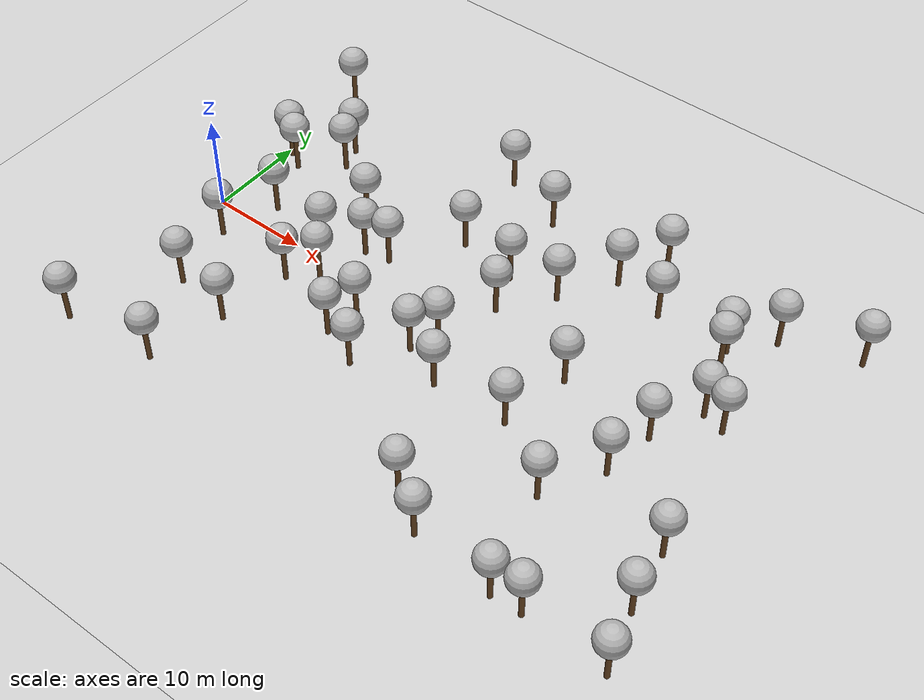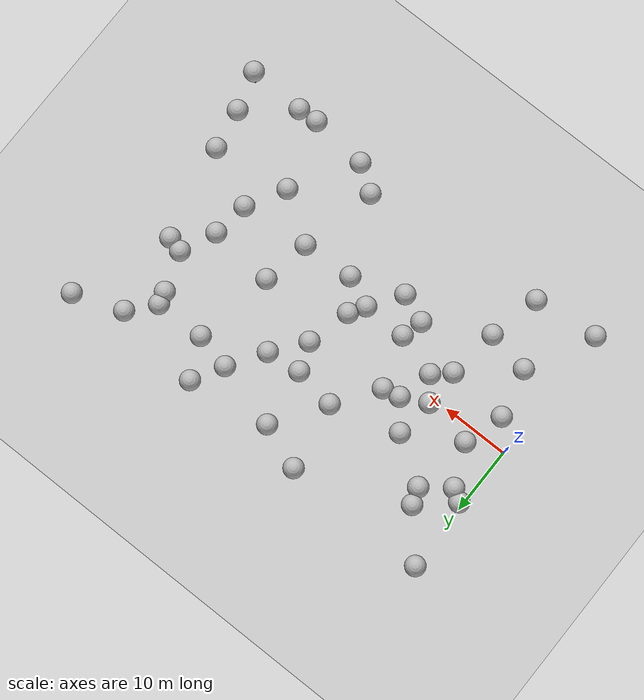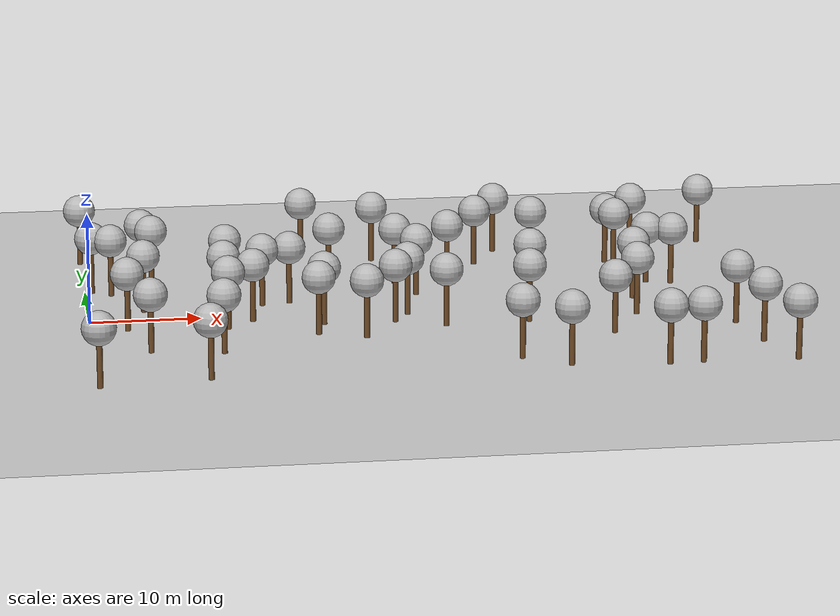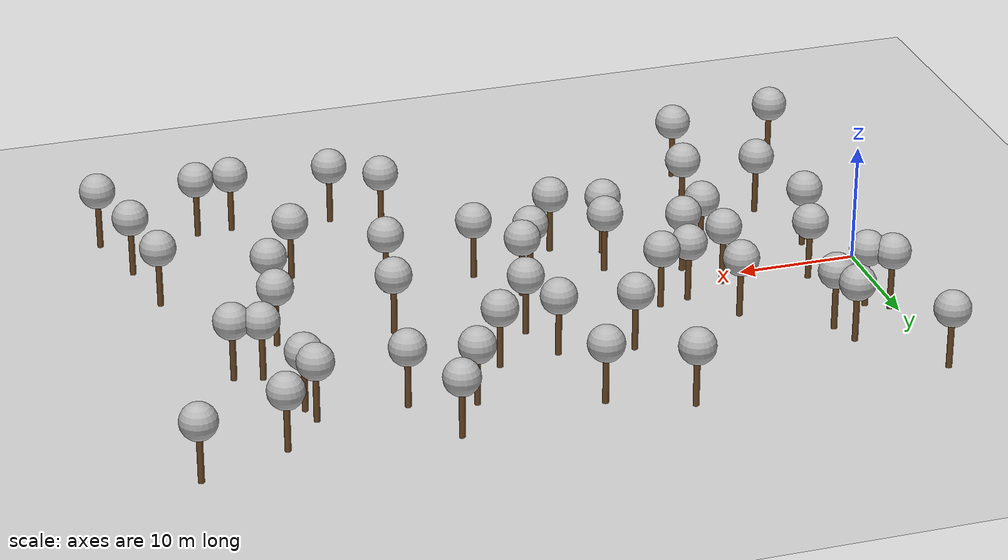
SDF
<sdf version='1.7'>
            <world name='default'>
                <light name='sun' type='directional'>
                <cast_shadows>1</cast_shadows>
                <pose>0 0 10 0 -0 0</pose>
                <diffuse>0.8 0.8 0.8 1</diffuse>
                <specular>0.2 0.2 0.2 1</specular>
                <attenuation>
                    <range>1000</range>
                    <constant>0.9</constant>
                    <linear>0.01</linear>
                    <quadratic>0.001</quadratic>
                </attenuation>
                <direction>-0.5 0.1 -0.9</direction>
                <spot>
                    <inner_angle>0</inner_angle>
                    <outer_angle>0</outer_angle>
                    <falloff>0</falloff>
                </spot>
                </light>
                <model name='ground_plane'>
                <static>1</static>
                <link name='link'>
                    <collision name='collision'>
                    <geometry>
                        <plane>
                        <normal>0 0 1</normal>
                        <size>100 100</size>
                        </plane>
                    </geometry>
                    <surface>
                        <contact>
                        <collide_bitmask>65535</collide_bitmask>
                        <ode/>
                        </contact>
                        <friction>
                        <ode>
                            <mu>100</mu>
                            <mu2>50</mu2>
                        </ode>
                        <torsional>
                            <ode/>
                        </torsional>
                        </friction>
                        <bounce/>
                    </surface>
                    <max_contacts>10</max_contacts>
                    </collision>
                    <visual name='visual'>
                    <cast_shadows>0</cast_shadows>
                    <geometry>
                        <plane>
                        <normal>0 0 1</normal>
                        <size>100 100</size>
                        </plane>
                    </geometry>
                    <material>
                        <script>
                        <uri>file://media/materials/scripts/gazebo.material</uri>
                        <name>Gazebo/Grey</name>
                        </script>
                    </material>
                    </visual>
                    <self_collide>0</self_collide>
                    <enable_wind>0</enable_wind>
                    <kinematic>0</kinematic>
                </link>
                </model>
                <gravity>0 0 -9.8</gravity>
                <magnetic_field>6e-06 2.3e-05 -4.2e-05</magnetic_field>
                <atmosphere type='adiabatic'/>
                <physics type='ode'>
                <max_step_size>0.001</max_step_size>
                <real_time_factor>1</real_time_factor>
                <real_time_update_rate>1000</real_time_update_rate>
                </physics>
                <scene>
                <ambient>0.4 0.4 0.4 1</ambient>
                <background>0.7 0.7 0.7 1</background>
                <shadows>1</shadows>
                </scene>
                <wind/>
                <spherical_coordinates>
                <surface_model>EARTH_WGS84</surface_model>
                <latitude_deg>0</latitude_deg>
                <longitude_deg>0</longitude_deg>
                <elevation>0</elevation>
                <heading_deg>0</heading_deg>
                </spherical_coordinates>

    <model name='tree_simple498'>
      <static>1</static>
      <link name='link'>
        <pose frame=''>0 0 0.1 0 -0 0</pose>
        <collision name='collision_trunk'>
          <pose frame=''>0 0 2 0 -0 0</pose>
          <geometry>
            <cylinder>
              <radius>0.25</radius>
              <length>4</length>
            </cylinder>
          </geometry>
        </collision>
        <collision name='collision_treetop'>
          <pose frame=''>0 0 5.2 0 -0 0</pose>
          <geometry>
            <sphere>
              <radius>1.5</radius>
            </sphere>
          </geometry>
        </collision>
        <visual name='trunk'>
          <pose frame=''>0 0 2 0 -0 0</pose>
          <geometry>
            <cylinder>
              <radius>0.25</radius>
              <length>4</length>
            </cylinder>
          </geometry>
          <material>
            <script>
              <uri>model://tree_simple/scripts</uri>
              <uri>model://tree_simple/materials/textures</uri>
              <name>TreeSimple/Trunk</name>
            </script>
          </material>
        </visual>
        <visual name='treetop'>
          <pose frame=''>0 0 5.2 0 -0 0</pose>
          <geometry>
            <sphere>
              <radius>1.5</radius>
            </sphere>
          </geometry>
          <material>
            <script>
              <uri>model://tree_simple/scripts</uri>
              <uri>model://tree_simple/materials/textures</uri>
              <name>TreeSimple/Treetop</name>
            </script>
          </material>
        </visual>
        <self_collide>0</self_collide>
        <kinematic>0</kinematic>
      </link>
      <pose frame=''>0.0 20.0 0 0 -0 0</pose>
    </model>
        <model name='tree_simple497'>
      <static>1</static>
      <link name='link'>
        <pose frame=''>0 0 0.1 0 -0 0</pose>
        <collision name='collision_trunk'>
          <pose frame=''>0 0 2 0 -0 0</pose>
          <geometry>
            <cylinder>
              <radius>0.25</radius>
              <length>4</length>
            </cylinder>
          </geometry>
        </collision>
        <collision name='collision_treetop'>
          <pose frame=''>0 0 5.2 0 -0 0</pose>
          <geometry>
            <sphere>
              <radius>1.5</radius>
            </sphere>
          </geometry>
        </collision>
        <visual name='trunk'>
          <pose frame=''>0 0 2 0 -0 0</pose>
          <geometry>
            <cylinder>
              <radius>0.25</radius>
              <length>4</length>
            </cylinder>
          </geometry>
          <material>
            <script>
              <uri>model://tree_simple/scripts</uri>
              <uri>model://tree_simple/materials/textures</uri>
              <name>TreeSimple/Trunk</name>
            </script>
          </material>
        </visual>
        <visual name='treetop'>
          <pose frame=''>0 0 5.2 0 -0 0</pose>
          <geometry>
            <sphere>
              <radius>1.5</radius>
            </sphere>
          </geometry>
          <material>
            <script>
              <uri>model://tree_simple/scripts</uri>
              <uri>model://tree_simple/materials/textures</uri>
              <name>TreeSimple/Treetop</name>
            </script>
          </material>
        </visual>
        <self_collide>0</self_collide>
        <kinematic>0</kinematic>
      </link>
      <pose frame=''>0.0 -20.0 0 0 -0 0</pose>
    </model>
        <model name='tree_simple496'>
      <static>1</static>
      <link name='link'>
        <pose frame=''>0 0 0.1 0 -0 0</pose>
        <collision name='collision_trunk'>
          <pose frame=''>0 0 2 0 -0 0</pose>
          <geometry>
            <cylinder>
              <radius>0.25</radius>
              <length>4</length>
            </cylinder>
          </geometry>
        </collision>
        <collision name='collision_treetop'>
          <pose frame=''>0 0 5.2 0 -0 0</pose>
          <geometry>
            <sphere>
              <radius>1.5</radius>
            </sphere>
          </geometry>
        </collision>
        <visual name='trunk'>
          <pose frame=''>0 0 2 0 -0 0</pose>
          <geometry>
            <cylinder>
              <radius>0.25</radius>
              <length>4</length>
            </cylinder>
          </geometry>
          <material>
            <script>
              <uri>model://tree_simple/scripts</uri>
              <uri>model://tree_simple/materials/textures</uri>
              <name>TreeSimple/Trunk</name>
            </script>
          </material>
        </visual>
        <visual name='treetop'>
          <pose frame=''>0 0 5.2 0 -0 0</pose>
          <geometry>
            <sphere>
              <radius>1.5</radius>
            </sphere>
          </geometry>
          <material>
            <script>
              <uri>model://tree_simple/scripts</uri>
              <uri>model://tree_simple/materials/textures</uri>
              <name>TreeSimple/Treetop</name>
            </script>
          </material>
        </visual>
        <self_collide>0</self_collide>
        <kinematic>0</kinematic>
      </link>
      <pose frame=''>60.0 20.0 0 0 -0 0</pose>
    </model>
        <model name='tree_simple495'>
      <static>1</static>
      <link name='link'>
        <pose frame=''>0 0 0.1 0 -0 0</pose>
        <collision name='collision_trunk'>
          <pose frame=''>0 0 2 0 -0 0</pose>
          <geometry>
            <cylinder>
              <radius>0.25</radius>
              <length>4</length>
            </cylinder>
          </geometry>
        </collision>
        <collision name='collision_treetop'>
          <pose frame=''>0 0 5.2 0 -0 0</pose>
          <geometry>
            <sphere>
              <radius>1.5</radius>
            </sphere>
          </geometry>
        </collision>
        <visual name='trunk'>
          <pose frame=''>0 0 2 0 -0 0</pose>
          <geometry>
            <cylinder>
              <radius>0.25</radius>
              <length>4</length>
            </cylinder>
          </geometry>
          <material>
            <script>
              <uri>model://tree_simple/scripts</uri>
              <uri>model://tree_simple/materials/textures</uri>
              <name>TreeSimple/Trunk</name>
            </script>
          </material>
        </visual>
        <visual name='treetop'>
          <pose frame=''>0 0 5.2 0 -0 0</pose>
          <geometry>
            <sphere>
              <radius>1.5</radius>
            </sphere>
          </geometry>
          <material>
            <script>
              <uri>model://tree_simple/scripts</uri>
              <uri>model://tree_simple/materials/textures</uri>
              <name>TreeSimple/Treetop</name>
            </script>
          </material>
        </visual>
        <self_collide>0</self_collide>
        <kinematic>0</kinematic>
      </link>
      <pose frame=''>60.0 -20.0 0 0 -0 0</pose>
    </model>
    <model name="tree_2_0"><pose frame="">52.8 17.44 0 0 -0 0</pose><static>1</static><link name="link"><pose frame="">0 0 0.1 0 -0 0</pose><collision name="collision_trunk"><pose frame="">0 0 2 0 -0 0</pose><geometry><cylinder><radius>0.25</radius><length>4</length></cylinder></geometry></collision><collision name="collision_treetop"><pose frame="">0 0 5.2 0 -0 0</pose><geometry><sphere><radius>1.5</radius></sphere></geometry></collision><visual name="trunk"><pose frame="">0 0 2 0 -0 0</pose><geometry><cylinder><radius>0.25</radius><length>4</length></cylinder></geometry><material><script><uri>model://tree_simple/scripts</uri><uri>model://tree_simple/materials/textures</uri><name>TreeSimple/Trunk</name></script></material></visual><visual name="treetop"><pose frame="">0 0 5.2 0 -0 0</pose><geometry><sphere><radius>1.5</radius></sphere></geometry><material><script><uri>model://tree_simple/scripts</uri><uri>model://tree_simple/materials/textures</uri><name>TreeSimple/Treetop</name></script></material></visual><self_collide>0</self_collide><kinematic>0</kinematic></link></model><model name="tree_2_1"><pose frame="">12.16 1.4 0 0 -0 0</pose><static>1</static><link name="link"><pose frame="">0 0 0.1 0 -0 0</pose><collision name="collision_trunk"><pose frame="">0 0 2 0 -0 0</pose><geometry><cylinder><radius>0.25</radius><length>4</length></cylinder></geometry></collision><collision name="collision_treetop"><pose frame="">0 0 5.2 0 -0 0</pose><geometry><sphere><radius>1.5</radius></sphere></geometry></collision><visual name="trunk"><pose frame="">0 0 2 0 -0 0</pose><geometry><cylinder><radius>0.25</radius><length>4</length></cylinder></geometry><material><script><uri>model://tree_simple/scripts</uri><uri>model://tree_simple/materials/textures</uri><name>TreeSimple/Trunk</name></script></material></visual><visual name="treetop"><pose frame="">0 0 5.2 0 -0 0</pose><geometry><sphere><radius>1.5</radius></sphere></geometry><material><script><uri>model://tree_simple/scripts</uri><uri>model://tree_simple/materials/textures</uri><name>TreeSimple/Treetop</name></script></material></visual><self_collide>0</self_collide><kinematic>0</kinematic></link></model><model name="tree_2_2"><pose frame="">39.03 -5.22 0 0 -0 0</pose><static>1</static><link name="link"><pose frame="">0 0 0.1 0 -0 0</pose><collision name="collision_trunk"><pose frame="">0 0 2 0 -0 0</pose><geometry><cylinder><radius>0.25</radius><length>4</length></cylinder></geometry></collision><collision name="collision_treetop"><pose frame="">0 0 5.2 0 -0 0</pose><geometry><sphere><radius>1.5</radius></sphere></geometry></collision><visual name="trunk"><pose frame="">0 0 2 0 -0 0</pose><geometry><cylinder><radius>0.25</radius><length>4</length></cylinder></geometry><material><script><uri>model://tree_simple/scripts</uri><uri>model://tree_simple/materials/textures</uri><name>TreeSimple/Trunk</name></script></material></visual><visual name="treetop"><pose frame="">0 0 5.2 0 -0 0</pose><geometry><sphere><radius>1.5</radius></sphere></geometry><material><script><uri>model://tree_simple/scripts</uri><uri>model://tree_simple/materials/textures</uri><name>TreeSimple/Treetop</name></script></material></visual><self_collide>0</self_collide><kinematic>0</kinematic></link></model><model name="tree_2_3"><pose frame="">57.26 -8.23 0 0 -0 0</pose><static>1</static><link name="link"><pose frame="">0 0 0.1 0 -0 0</pose><collision name="collision_trunk"><pose frame="">0 0 2 0 -0 0</pose><geometry><cylinder><radius>0.25</radius><length>4</length></cylinder></geometry></collision><collision name="collision_treetop"><pose frame="">0 0 5.2 0 -0 0</pose><geometry><sphere><radius>1.5</radius></sphere></geometry></collision><visual name="trunk"><pose frame="">0 0 2 0 -0 0</pose><geometry><cylinder><radius>0.25</radius><length>4</length></cylinder></geometry><material><script><uri>model://tree_simple/scripts</uri><uri>model://tree_simple/materials/textures</uri><name>TreeSimple/Trunk</name></script></material></visual><visual name="treetop"><pose frame="">0 0 5.2 0 -0 0</pose><geometry><sphere><radius>1.5</radius></sphere></geometry><material><script><uri>model://tree_simple/scripts</uri><uri>model://tree_simple/materials/textures</uri><name>TreeSimple/Treetop</name></script></material></visual><self_collide>0</self_collide><kinematic>0</kinematic></link></model><model name="tree_2_4"><pose frame="">49.75 1.08 0 0 -0 0</pose><static>1</static><link name="link"><pose frame="">0 0 0.1 0 -0 0</pose><collision name="collision_trunk"><pose frame="">0 0 2 0 -0 0</pose><geometry><cylinder><radius>0.25</radius><length>4</length></cylinder></geometry></collision><collision name="collision_treetop"><pose frame="">0 0 5.2 0 -0 0</pose><geometry><sphere><radius>1.5</radius></sphere></geometry></collision><visual name="trunk"><pose frame="">0 0 2 0 -0 0</pose><geometry><cylinder><radius>0.25</radius><length>4</length></cylinder></geometry><material><script><uri>model://tree_simple/scripts</uri><uri>model://tree_simple/materials/textures</uri><name>TreeSimple/Trunk</name></script></material></visual><visual name="treetop"><pose frame="">0 0 5.2 0 -0 0</pose><geometry><sphere><radius>1.5</radius></sphere></geometry><material><script><uri>model://tree_simple/scripts</uri><uri>model://tree_simple/materials/textures</uri><name>TreeSimple/Treetop</name></script></material></visual><self_collide>0</self_collide><kinematic>0</kinematic></link></model><model name="tree_2_5"><pose frame="">20.73 -3.62 0 0 -0 0</pose><static>1</static><link name="link"><pose frame="">0 0 0.1 0 -0 0</pose><collision name="collision_trunk"><pose frame="">0 0 2 0 -0 0</pose><geometry><cylinder><radius>0.25</radius><length>4</length></cylinder></geometry></collision><collision name="collision_treetop"><pose frame="">0 0 5.2 0 -0 0</pose><geometry><sphere><radius>1.5</radius></sphere></geometry></collision><visual name="trunk"><pose frame="">0 0 2 0 -0 0</pose><geometry><cylinder><radius>0.25</radius><length>4</length></cylinder></geometry><material><script><uri>model://tree_simple/scripts</uri><uri>model://tree_simple/materials/textures</uri><name>TreeSimple/Trunk</name></script></material></visual><visual name="treetop"><pose frame="">0 0 5.2 0 -0 0</pose><geometry><sphere><radius>1.5</radius></sphere></geometry><material><script><uri>model://tree_simple/scripts</uri><uri>model://tree_simple/materials/textures</uri><name>TreeSimple/Treetop</name></script></material></visual><self_collide>0</self_collide><kinematic>0</kinematic></link></model><model name="tree_2_6"><pose frame="">40.3 -19.04 0 0 -0 0</pose><static>1</static><link name="link"><pose frame="">0 0 0.1 0 -0 0</pose><collision name="collision_trunk"><pose frame="">0 0 2 0 -0 0</pose><geometry><cylinder><radius>0.25</radius><length>4</length></cylinder></geometry></collision><collision name="collision_treetop"><pose frame="">0 0 5.2 0 -0 0</pose><geometry><sphere><radius>1.5</radius></sphere></geometry></collision><visual name="trunk"><pose frame="">0 0 2 0 -0 0</pose><geometry><cylinder><radius>0.25</radius><length>4</length></cylinder></geometry><material><script><uri>model://tree_simple/scripts</uri><uri>model://tree_simple/materials/textures</uri><name>TreeSimple/Trunk</name></script></material></visual><visual name="treetop"><pose frame="">0 0 5.2 0 -0 0</pose><geometry><sphere><radius>1.5</radius></sphere></geometry><material><script><uri>model://tree_simple/scripts</uri><uri>model://tree_simple/materials/textures</uri><name>TreeSimple/Treetop</name></script></material></visual><self_collide>0</self_collide><kinematic>0</kinematic></link></model><model name="tree_2_7"><pose frame="">11.16 -11.38 0 0 -0 0</pose><static>1</static><link name="link"><pose frame="">0 0 0.1 0 -0 0</pose><collision name="collision_trunk"><pose frame="">0 0 2 0 -0 0</pose><geometry><cylinder><radius>0.25</radius><length>4</length></cylinder></geometry></collision><collision name="collision_treetop"><pose frame="">0 0 5.2 0 -0 0</pose><geometry><sphere><radius>1.5</radius></sphere></geometry></collision><visual name="trunk"><pose frame="">0 0 2 0 -0 0</pose><geometry><cylinder><radius>0.25</radius><length>4</length></cylinder></geometry><material><script><uri>model://tree_simple/scripts</uri><uri>model://tree_simple/materials/textures</uri><name>TreeSimple/Trunk</name></script></material></visual><visual name="treetop"><pose frame="">0 0 5.2 0 -0 0</pose><geometry><sphere><radius>1.5</radius></sphere></geometry><material><script><uri>model://tree_simple/scripts</uri><uri>model://tree_simple/materials/textures</uri><name>TreeSimple/Treetop</name></script></material></visual><self_collide>0</self_collide><kinematic>0</kinematic></link></model><model name="tree_2_8"><pose frame="">12.14 -3.93 0 0 -0 0</pose><static>1</static><link name="link"><pose frame="">0 0 0.1 0 -0 0</pose><collision name="collision_trunk"><pose frame="">0 0 2 0 -0 0</pose><geometry><cylinder><radius>0.25</radius><length>4</length></cylinder></geometry></collision><collision name="collision_treetop"><pose frame="">0 0 5.2 0 -0 0</pose><geometry><sphere><radius>1.5</radius></sphere></geometry></collision><visual name="trunk"><pose frame="">0 0 2 0 -0 0</pose><geometry><cylinder><radius>0.25</radius><length>4</length></cylinder></geometry><material><script><uri>model://tree_simple/scripts</uri><uri>model://tree_simple/materials/textures</uri><name>TreeSimple/Trunk</name></script></material></visual><visual name="treetop"><pose frame="">0 0 5.2 0 -0 0</pose><geometry><sphere><radius>1.5</radius></sphere></geometry><material><script><uri>model://tree_simple/scripts</uri><uri>model://tree_simple/materials/textures</uri><name>TreeSimple/Treetop</name></script></material></visual><self_collide>0</self_collide><kinematic>0</kinematic></link></model><model name="tree_2_9"><pose frame="">5.02 2.59 0 0 -0 0</pose><static>1</static><link name="link"><pose frame="">0 0 0.1 0 -0 0</pose><collision name="collision_trunk"><pose frame="">0 0 2 0 -0 0</pose><geometry><cylinder><radius>0.25</radius><length>4</length></cylinder></geometry></collision><collision name="collision_treetop"><pose frame="">0 0 5.2 0 -0 0</pose><geometry><sphere><radius>1.5</radius></sphere></geometry></collision><visual name="trunk"><pose frame="">0 0 2 0 -0 0</pose><geometry><cylinder><radius>0.25</radius><length>4</length></cylinder></geometry><material><script><uri>model://tree_simple/scripts</uri><uri>model://tree_simple/materials/textures</uri><name>TreeSimple/Trunk</name></script></material></visual><visual name="treetop"><pose frame="">0 0 5.2 0 -0 0</pose><geometry><sphere><radius>1.5</radius></sphere></geometry><material><script><uri>model://tree_simple/scripts</uri><uri>model://tree_simple/materials/textures</uri><name>TreeSimple/Treetop</name></script></material></visual><self_collide>0</self_collide><kinematic>0</kinematic></link></model><model name="tree_2_10"><pose frame="">27.14 -3.68 0 0 -0 0</pose><static>1</static><link name="link"><pose frame="">0 0 0.1 0 -0 0</pose><collision name="collision_trunk"><pose frame="">0 0 2 0 -0 0</pose><geometry><cylinder><radius>0.25</radius><length>4</length></cylinder></geometry></collision><collision name="collision_treetop"><pose frame="">0 0 5.2 0 -0 0</pose><geometry><sphere><radius>1.5</radius></sphere></geometry></collision><visual name="trunk"><pose frame="">0 0 2 0 -0 0</pose><geometry><cylinder><radius>0.25</radius><length>4</length></cylinder></geometry><material><script><uri>model://tree_simple/scripts</uri><uri>model://tree_simple/materials/textures</uri><name>TreeSimple/Trunk</name></script></material></visual><visual name="treetop"><pose frame="">0 0 5.2 0 -0 0</pose><geometry><sphere><radius>1.5</radius></sphere></geometry><material><script><uri>model://tree_simple/scripts</uri><uri>model://tree_simple/materials/textures</uri><name>TreeSimple/Treetop</name></script></material></visual><self_collide>0</self_collide><kinematic>0</kinematic></link></model><model name="tree_2_11"><pose frame="">50.1 11.92 0 0 -0 0</pose><static>1</static><link name="link"><pose frame="">0 0 0.1 0 -0 0</pose><collision name="collision_trunk"><pose frame="">0 0 2 0 -0 0</pose><geometry><cylinder><radius>0.25</radius><length>4</length></cylinder></geometry></collision><collision name="collision_treetop"><pose frame="">0 0 5.2 0 -0 0</pose><geometry><sphere><radius>1.5</radius></sphere></geometry></collision><visual name="trunk"><pose frame="">0 0 2 0 -0 0</pose><geometry><cylinder><radius>0.25</radius><length>4</length></cylinder></geometry><material><script><uri>model://tree_simple/scripts</uri><uri>model://tree_simple/materials/textures</uri><name>TreeSimple/Trunk</name></script></material></visual><visual name="treetop"><pose frame="">0 0 5.2 0 -0 0</pose><geometry><sphere><radius>1.5</radius></sphere></geometry><material><script><uri>model://tree_simple/scripts</uri><uri>model://tree_simple/materials/textures</uri><name>TreeSimple/Treetop</name></script></material></visual><self_collide>0</self_collide><kinematic>0</kinematic></link></model><model name="tree_2_12"><pose frame="">51.69 -19.72 0 0 -0 0</pose><static>1</static><link name="link"><pose frame="">0 0 0.1 0 -0 0</pose><collision name="collision_trunk"><pose frame="">0 0 2 0 -0 0</pose><geometry><cylinder><radius>0.25</radius><length>4</length></cylinder></geometry></collision><collision name="collision_treetop"><pose frame="">0 0 5.2 0 -0 0</pose><geometry><sphere><radius>1.5</radius></sphere></geometry></collision><visual name="trunk"><pose frame="">0 0 2 0 -0 0</pose><geometry><cylinder><radius>0.25</radius><length>4</length></cylinder></geometry><material><script><uri>model://tree_simple/scripts</uri><uri>model://tree_simple/materials/textures</uri><name>TreeSimple/Trunk</name></script></material></visual><visual name="treetop"><pose frame="">0 0 5.2 0 -0 0</pose><geometry><sphere><radius>1.5</radius></sphere></geometry><material><script><uri>model://tree_simple/scripts</uri><uri>model://tree_simple/materials/textures</uri><name>TreeSimple/Treetop</name></script></material></visual><self_collide>0</self_collide><kinematic>0</kinematic></link></model><model name="tree_2_13"><pose frame="">28.55 -1.41 0 0 -0 0</pose><static>1</static><link name="link"><pose frame="">0 0 0.1 0 -0 0</pose><collision name="collision_trunk"><pose frame="">0 0 2 0 -0 0</pose><geometry><cylinder><radius>0.25</radius><length>4</length></cylinder></geometry></collision><collision name="collision_treetop"><pose frame="">0 0 5.2 0 -0 0</pose><geometry><sphere><radius>1.5</radius></sphere></geometry></collision><visual name="trunk"><pose frame="">0 0 2 0 -0 0</pose><geometry><cylinder><radius>0.25</radius><length>4</length></cylinder></geometry><material><script><uri>model://tree_simple/scripts</uri><uri>model://tree_simple/materials/textures</uri><name>TreeSimple/Trunk</name></script></material></visual><visual name="treetop"><pose frame="">0 0 5.2 0 -0 0</pose><geometry><sphere><radius>1.5</radius></sphere></geometry><material><script><uri>model://tree_simple/scripts</uri><uri>model://tree_simple/materials/textures</uri><name>TreeSimple/Treetop</name></script></material></visual><self_collide>0</self_collide><kinematic>0</kinematic></link></model><model name="tree_2_14"><pose frame="">0.64 9.55 0 0 -0 0</pose><static>1</static><link name="link"><pose frame="">0 0 0.1 0 -0 0</pose><collision name="collision_trunk"><pose frame="">0 0 2 0 -0 0</pose><geometry><cylinder><radius>0.25</radius><length>4</length></cylinder></geometry></collision><collision name="collision_treetop"><pose frame="">0 0 5.2 0 -0 0</pose><geometry><sphere><radius>1.5</radius></sphere></geometry></collision><visual name="trunk"><pose frame="">0 0 2 0 -0 0</pose><geometry><cylinder><radius>0.25</radius><length>4</length></cylinder></geometry><material><script><uri>model://tree_simple/scripts</uri><uri>model://tree_simple/materials/textures</uri><name>TreeSimple/Trunk</name></script></material></visual><visual name="treetop"><pose frame="">0 0 5.2 0 -0 0</pose><geometry><sphere><radius>1.5</radius></sphere></geometry><material><script><uri>model://tree_simple/scripts</uri><uri>model://tree_simple/materials/textures</uri><name>TreeSimple/Treetop</name></script></material></visual><self_collide>0</self_collide><kinematic>0</kinematic></link></model><model name="tree_2_15"><pose frame="">54.28 5.59 0 0 -0 0</pose><static>1</static><link name="link"><pose frame="">0 0 0.1 0 -0 0</pose><collision name="collision_trunk"><pose frame="">0 0 2 0 -0 0</pose><geometry><cylinder><radius>0.25</radius><length>4</length></cylinder></geometry></collision><collision name="collision_treetop"><pose frame="">0 0 5.2 0 -0 0</pose><geometry><sphere><radius>1.5</radius></sphere></geometry></collision><visual name="trunk"><pose frame="">0 0 2 0 -0 0</pose><geometry><cylinder><radius>0.25</radius><length>4</length></cylinder></geometry><material><script><uri>model://tree_simple/scripts</uri><uri>model://tree_simple/materials/textures</uri><name>TreeSimple/Trunk</name></script></material></visual><visual name="treetop"><pose frame="">0 0 5.2 0 -0 0</pose><geometry><sphere><radius>1.5</radius></sphere></geometry><material><script><uri>model://tree_simple/scripts</uri><uri>model://tree_simple/materials/textures</uri><name>TreeSimple/Treetop</name></script></material></visual><self_collide>0</self_collide><kinematic>0</kinematic></link></model><model name="tree_2_16"><pose frame="">39.67 19.29 0 0 -0 0</pose><static>1</static><link name="link"><pose frame="">0 0 0.1 0 -0 0</pose><collision name="collision_trunk"><pose frame="">0 0 2 0 -0 0</pose><geometry><cylinder><radius>0.25</radius><length>4</length></cylinder></geometry></collision><collision name="collision_treetop"><pose frame="">0 0 5.2 0 -0 0</pose><geometry><sphere><radius>1.5</radius></sphere></geometry></collision><visual name="trunk"><pose frame="">0 0 2 0 -0 0</pose><geometry><cylinder><radius>0.25</radius><length>4</length></cylinder></geometry><material><script><uri>model://tree_simple/scripts</uri><uri>model://tree_simple/materials/textures</uri><name>TreeSimple/Trunk</name></script></material></visual><visual name="treetop"><pose frame="">0 0 5.2 0 -0 0</pose><geometry><sphere><radius>1.5</radius></sphere></geometry><material><script><uri>model://tree_simple/scripts</uri><uri>model://tree_simple/materials/textures</uri><name>TreeSimple/Treetop</name></script></material></visual><self_collide>0</self_collide><kinematic>0</kinematic></link></model><model name="tree_2_17"><pose frame="">42.36 13.63 0 0 -0 0</pose><static>1</static><link name="link"><pose frame="">0 0 0.1 0 -0 0</pose><collision name="collision_trunk"><pose frame="">0 0 2 0 -0 0</pose><geometry><cylinder><radius>0.25</radius><length>4</length></cylinder></geometry></collision><collision name="collision_treetop"><pose frame="">0 0 5.2 0 -0 0</pose><geometry><sphere><radius>1.5</radius></sphere></geometry></collision><visual name="trunk"><pose frame="">0 0 2 0 -0 0</pose><geometry><cylinder><radius>0.25</radius><length>4</length></cylinder></geometry><material><script><uri>model://tree_simple/scripts</uri><uri>model://tree_simple/materials/textures</uri><name>TreeSimple/Trunk</name></script></material></visual><visual name="treetop"><pose frame="">0 0 5.2 0 -0 0</pose><geometry><sphere><radius>1.5</radius></sphere></geometry><material><script><uri>model://tree_simple/scripts</uri><uri>model://tree_simple/materials/textures</uri><name>TreeSimple/Treetop</name></script></material></visual><self_collide>0</self_collide><kinematic>0</kinematic></link></model><model name="tree_2_18"><pose frame="">19.91 -6.7 0 0 -0 0</pose><static>1</static><link name="link"><pose frame="">0 0 0.1 0 -0 0</pose><collision name="collision_trunk"><pose frame="">0 0 2 0 -0 0</pose><geometry><cylinder><radius>0.25</radius><length>4</length></cylinder></geometry></collision><collision name="collision_treetop"><pose frame="">0 0 5.2 0 -0 0</pose><geometry><sphere><radius>1.5</radius></sphere></geometry></collision><visual name="trunk"><pose frame="">0 0 2 0 -0 0</pose><geometry><cylinder><radius>0.25</radius><length>4</length></cylinder></geometry><material><script><uri>model://tree_simple/scripts</uri><uri>model://tree_simple/materials/textures</uri><name>TreeSimple/Trunk</name></script></material></visual><visual name="treetop"><pose frame="">0 0 5.2 0 -0 0</pose><geometry><sphere><radius>1.5</radius></sphere></geometry><material><script><uri>model://tree_simple/scripts</uri><uri>model://tree_simple/materials/textures</uri><name>TreeSimple/Treetop</name></script></material></visual><self_collide>0</self_collide><kinematic>0</kinematic></link></model><model name="tree_2_19"><pose frame="">28.76 9.05 0 0 -0 0</pose><static>1</static><link name="link"><pose frame="">0 0 0.1 0 -0 0</pose><collision name="collision_trunk"><pose frame="">0 0 2 0 -0 0</pose><geometry><cylinder><radius>0.25</radius><length>4</length></cylinder></geometry></collision><collision name="collision_treetop"><pose frame="">0 0 5.2 0 -0 0</pose><geometry><sphere><radius>1.5</radius></sphere></geometry></collision><visual name="trunk"><pose frame="">0 0 2 0 -0 0</pose><geometry><cylinder><radius>0.25</radius><length>4</length></cylinder></geometry><material><script><uri>model://tree_simple/scripts</uri><uri>model://tree_simple/materials/textures</uri><name>TreeSimple/Trunk</name></script></material></visual><visual name="treetop"><pose frame="">0 0 5.2 0 -0 0</pose><geometry><sphere><radius>1.5</radius></sphere></geometry><material><script><uri>model://tree_simple/scripts</uri><uri>model://tree_simple/materials/textures</uri><name>TreeSimple/Treetop</name></script></material></visual><self_collide>0</self_collide><kinematic>0</kinematic></link></model><model name="tree_2_20"><pose frame="">49.04 -4.22 0 0 -0 0</pose><static>1</static><link name="link"><pose frame="">0 0 0.1 0 -0 0</pose><collision name="collision_trunk"><pose frame="">0 0 2 0 -0 0</pose><geometry><cylinder><radius>0.25</radius><length>4</length></cylinder></geometry></collision><collision name="collision_treetop"><pose frame="">0 0 5.2 0 -0 0</pose><geometry><sphere><radius>1.5</radius></sphere></geometry></collision><visual name="trunk"><pose frame="">0 0 2 0 -0 0</pose><geometry><cylinder><radius>0.25</radius><length>4</length></cylinder></geometry><material><script><uri>model://tree_simple/scripts</uri><uri>model://tree_simple/materials/textures</uri><name>TreeSimple/Trunk</name></script></material></visual><visual name="treetop"><pose frame="">0 0 5.2 0 -0 0</pose><geometry><sphere><radius>1.5</radius></sphere></geometry><material><script><uri>model://tree_simple/scripts</uri><uri>model://tree_simple/materials/textures</uri><name>TreeSimple/Treetop</name></script></material></visual><self_collide>0</self_collide><kinematic>0</kinematic></link></model><model name="tree_2_21"><pose frame="">18.35 3.78 0 0 -0 0</pose><static>1</static><link name="link"><pose frame="">0 0 0.1 0 -0 0</pose><collision name="collision_trunk"><pose frame="">0 0 2 0 -0 0</pose><geometry><cylinder><radius>0.25</radius><length>4</length></cylinder></geometry></collision><collision name="collision_treetop"><pose frame="">0 0 5.2 0 -0 0</pose><geometry><sphere><radius>1.5</radius></sphere></geometry></collision><visual name="trunk"><pose frame="">0 0 2 0 -0 0</pose><geometry><cylinder><radius>0.25</radius><length>4</length></cylinder></geometry><material><script><uri>model://tree_simple/scripts</uri><uri>model://tree_simple/materials/textures</uri><name>TreeSimple/Trunk</name></script></material></visual><visual name="treetop"><pose frame="">0 0 5.2 0 -0 0</pose><geometry><sphere><radius>1.5</radius></sphere></geometry><material><script><uri>model://tree_simple/scripts</uri><uri>model://tree_simple/materials/textures</uri><name>TreeSimple/Treetop</name></script></material></visual><self_collide>0</self_collide><kinematic>0</kinematic></link></model><model name="tree_2_22"><pose frame="">3.26 -3.24 0 0 -0 0</pose><static>1</static><link name="link"><pose frame="">0 0 0.1 0 -0 0</pose><collision name="collision_trunk"><pose frame="">0 0 2 0 -0 0</pose><geometry><cylinder><radius>0.25</radius><length>4</length></cylinder></geometry></collision><collision name="collision_treetop"><pose frame="">0 0 5.2 0 -0 0</pose><geometry><sphere><radius>1.5</radius></sphere></geometry></collision><visual name="trunk"><pose frame="">0 0 2 0 -0 0</pose><geometry><cylinder><radius>0.25</radius><length>4</length></cylinder></geometry><material><script><uri>model://tree_simple/scripts</uri><uri>model://tree_simple/materials/textures</uri><name>TreeSimple/Trunk</name></script></material></visual><visual name="treetop"><pose frame="">0 0 5.2 0 -0 0</pose><geometry><sphere><radius>1.5</radius></sphere></geometry><material><script><uri>model://tree_simple/scripts</uri><uri>model://tree_simple/materials/textures</uri><name>TreeSimple/Treetop</name></script></material></visual><self_collide>0</self_collide><kinematic>0</kinematic></link></model><model name="tree_2_23"><pose frame="">22.69 10.0 0 0 -0 0</pose><static>1</static><link name="link"><pose frame="">0 0 0.1 0 -0 0</pose><collision name="collision_trunk"><pose frame="">0 0 2 0 -0 0</pose><geometry><cylinder><radius>0.25</radius><length>4</length></cylinder></geometry></collision><collision name="collision_treetop"><pose frame="">0 0 5.2 0 -0 0</pose><geometry><sphere><radius>1.5</radius></sphere></geometry></collision><visual name="trunk"><pose frame="">0 0 2 0 -0 0</pose><geometry><cylinder><radius>0.25</radius><length>4</length></cylinder></geometry><material><script><uri>model://tree_simple/scripts</uri><uri>model://tree_simple/materials/textures</uri><name>TreeSimple/Trunk</name></script></material></visual><visual name="treetop"><pose frame="">0 0 5.2 0 -0 0</pose><geometry><sphere><radius>1.5</radius></sphere></geometry><material><script><uri>model://tree_simple/scripts</uri><uri>model://tree_simple/materials/textures</uri><name>TreeSimple/Treetop</name></script></material></visual><self_collide>0</self_collide><kinematic>0</kinematic></link></model><model name="tree_2_24"><pose frame="">5.42 13.79 0 0 -0 0</pose><static>1</static><link name="link"><pose frame="">0 0 0.1 0 -0 0</pose><collision name="collision_trunk"><pose frame="">0 0 2 0 -0 0</pose><geometry><cylinder><radius>0.25</radius><length>4</length></cylinder></geometry></collision><collision name="collision_treetop"><pose frame="">0 0 5.2 0 -0 0</pose><geometry><sphere><radius>1.5</radius></sphere></geometry></collision><visual name="trunk"><pose frame="">0 0 2 0 -0 0</pose><geometry><cylinder><radius>0.25</radius><length>4</length></cylinder></geometry><material><script><uri>model://tree_simple/scripts</uri><uri>model://tree_simple/materials/textures</uri><name>TreeSimple/Trunk</name></script></material></visual><visual name="treetop"><pose frame="">0 0 5.2 0 -0 0</pose><geometry><sphere><radius>1.5</radius></sphere></geometry><material><script><uri>model://tree_simple/scripts</uri><uri>model://tree_simple/materials/textures</uri><name>TreeSimple/Treetop</name></script></material></visual><self_collide>0</self_collide><kinematic>0</kinematic></link></model>
    <model name="tree_1_21">
  <pose frame="">2.37 8.45 0 0 -0 0</pose>
  <static>1</static>
  <link name="link">
    <pose frame="">0 0 0.1 0 -0 0</pose>
    <collision name="collision_trunk"><pose frame="">0 0 2 0 -0 0</pose><geometry><cylinder><radius>0.25</radius><length>4</length></cylinder></geometry></collision>
    <collision name="collision_treetop"><pose frame="">0 0 5.2 0 -0 0</pose><geometry><sphere><radius>1.5</radius></sphere></geometry></collision>
    <visual name="trunk"><pose frame="">0 0 2 0 -0 0</pose><geometry><cylinder><radius>0.25</radius><length>4</length></cylinder></geometry><material><script><uri>model://tree_simple/scripts</uri><uri>model://tree_simple/materials/textures</uri><name>TreeSimple/Trunk</name></script></material></visual>
    <visual name="treetop"><pose frame="">0 0 5.2 0 -0 0</pose><geometry><sphere><radius>1.5</radius></sphere></geometry><material><script><uri>model://tree_simple/scripts</uri><uri>model://tree_simple/materials/textures</uri><name>TreeSimple/Treetop</name></script></material></visual>
    <self_collide>0</self_collide><kinematic>0</kinematic>
  </link>
</model>
<model name="tree_1_22">
  <pose frame="">31.45 -5.61 0 0 -0 0</pose>
  <static>1</static>
  <link name="link">
    <pose frame="">0 0 0.1 0 -0 0</pose>
    <collision name="collision_trunk"><pose frame="">0 0 2 0 -0 0</pose><geometry><cylinder><radius>0.25</radius><length>4</length></cylinder></geometry></collision>
    <collision name="collision_treetop"><pose frame="">0 0 5.2 0 -0 0</pose><geometry><sphere><radius>1.5</radius></sphere></geometry></collision>
    <visual name="trunk"><pose frame="">0 0 2 0 -0 0</pose><geometry><cylinder><radius>0.25</radius><length>4</length></cylinder></geometry><material><script><uri>model://tree_simple/scripts</uri><uri>model://tree_simple/materials/textures</uri><name>TreeSimple/Trunk</name></script></material></visual>
    <visual name="treetop"><pose frame="">0 0 5.2 0 -0 0</pose><geometry><sphere><radius>1.5</radius></sphere></geometry><material><script><uri>model://tree_simple/scripts</uri><uri>model://tree_simple/materials/textures</uri><name>TreeSimple/Treetop</name></script></material></visual>
    <self_collide>0</self_collide><kinematic>0</kinematic>
  </link>
</model>
<model name="tree_1_23">
  <pose frame="">48.72 -19.87 0 0 -0 0</pose>
  <static>1</static>
  <link name="link">
    <pose frame="">0 0 0.1 0 -0 0</pose>
    <collision name="collision_trunk"><pose frame="">0 0 2 0 -0 0</pose><geometry><cylinder><radius>0.25</radius><length>4</length></cylinder></geometry></collision>
    <collision name="collision_treetop"><pose frame="">0 0 5.2 0 -0 0</pose><geometry><sphere><radius>1.5</radius></sphere></geometry></collision>
    <visual name="trunk"><pose frame="">0 0 2 0 -0 0</pose><geometry><cylinder><radius>0.25</radius><length>4</length></cylinder></geometry><material><script><uri>model://tree_simple/scripts</uri><uri>model://tree_simple/materials/textures</uri><name>TreeSimple/Trunk</name></script></material></visual>
    <visual name="treetop"><pose frame="">0 0 5.2 0 -0 0</pose><geometry><sphere><radius>1.5</radius></sphere></geometry><material><script><uri>model://tree_simple/scripts</uri><uri>model://tree_simple/materials/textures</uri><name>TreeSimple/Treetop</name></script></material></visual>
    <self_collide>0</self_collide><kinematic>0</kinematic>
  </link>
</model>
<model name="tree_1_24">
  <pose frame="">15.83 3.27 0 0 -0 0</pose>
  <static>1</static>
  <link name="link">
    <pose frame="">0 0 0.1 0 -0 0</pose>
    <collision name="collision_trunk"><pose frame="">0 0 2 0 -0 0</pose><geometry><cylinder><radius>0.25</radius><length>4</length></cylinder></geometry></collision>
    <collision name="collision_treetop"><pose frame="">0 0 5.2 0 -0 0</pose><geometry><sphere><radius>1.5</radius></sphere></geometry></collision>
    <visual name="trunk"><pose frame="">0 0 2 0 -0 0</pose><geometry><cylinder><radius>0.25</radius><length>4</length></cylinder></geometry><material><script><uri>model://tree_simple/scripts</uri><uri>model://tree_simple/materials/textures</uri><name>TreeSimple/Trunk</name></script></material></visual>
    <visual name="treetop"><pose frame="">0 0 5.2 0 -0 0</pose><geometry><sphere><radius>1.5</radius></sphere></geometry><material><script><uri>model://tree_simple/scripts</uri><uri>model://tree_simple/materials/textures</uri><name>TreeSimple/Treetop</name></script></material></visual>
    <self_collide>0</self_collide><kinematic>0</kinematic>
  </link>
</model>
<model name="tree_1_25">
  <pose frame="">37.14 14.81 0 0 -0 0</pose>
  <static>1</static>
  <link name="link">
    <pose frame="">0 0 0.1 0 -0 0</pose>
    <collision name="collision_trunk"><pose frame="">0 0 2 0 -0 0</pose><geometry><cylinder><radius>0.25</radius><length>4</length></cylinder></geometry></collision>
    <collision name="collision_treetop"><pose frame="">0 0 5.2 0 -0 0</pose><geometry><sphere><radius>1.5</radius></sphere></geometry></collision>
    <visual name="trunk"><pose frame="">0 0 2 0 -0 0</pose><geometry><cylinder><radius>0.25</radius><length>4</length></cylinder></geometry><material><script><uri>model://tree_simple/scripts</uri><uri>model://tree_simple/materials/textures</uri><name>TreeSimple/Trunk</name></script></material></visual>
    <visual name="treetop"><pose frame="">0 0 5.2 0 -0 0</pose><geometry><sphere><radius>1.5</radius></sphere></geometry><material><script><uri>model://tree_simple/scripts</uri><uri>model://tree_simple/materials/textures</uri><name>TreeSimple/Treetop</name></script></material></visual>
    <self_collide>0</self_collide><kinematic>0</kinematic>
  </link>
</model>
<model name="tree_1_26">
  <pose frame="">23.98 -8.34 0 0 -0 0</pose>
  <static>1</static>
  <link name="link">
    <pose frame="">0 0 0.1 0 -0 0</pose>
    <collision name="collision_trunk"><pose frame="">0 0 2 0 -0 0</pose><geometry><cylinder><radius>0.25</radius><length>4</length></cylinder></geometry></collision>
    <collision name="collision_treetop"><pose frame="">0 0 5.2 0 -0 0</pose><geometry><sphere><radius>1.5</radius></sphere></geometry></collision>
    <visual name="trunk"><pose frame="">0 0 2 0 -0 0</pose><geometry><cylinder><radius>0.25</radius><length>4</length></cylinder></geometry><material><script><uri>model://tree_simple/scripts</uri><uri>model://tree_simple/materials/textures</uri><name>TreeSimple/Trunk</name></script></material></visual>
    <visual name="treetop"><pose frame="">0 0 5.2 0 -0 0</pose><geometry><sphere><radius>1.5</radius></sphere></geometry><material><script><uri>model://tree_simple/scripts</uri><uri>model://tree_simple/materials/textures</uri><name>TreeSimple/Treetop</name></script></material></visual>
    <self_collide>0</self_collide><kinematic>0</kinematic>
  </link>
</model>
<model name="tree_1_27">
  <pose frame="">52.06 6.19 0 0 -0 0</pose>
  <static>1</static>
  <link name="link">
    <pose frame="">0 0 0.1 0 -0 0</pose>
    <collision name="collision_trunk"><pose frame="">0 0 2 0 -0 0</pose><geometry><cylinder><radius>0.25</radius><length>4</length></cylinder></geometry></collision>
    <collision name="collision_treetop"><pose frame="">0 0 5.2 0 -0 0</pose><geometry><sphere><radius>1.5</radius></sphere></geometry></collision>
    <visual name="trunk"><pose frame="">0 0 2 0 -0 0</pose><geometry><cylinder><radius>0.25</radius><length>4</length></cylinder></geometry><material><script><uri>model://tree_simple/scripts</uri><uri>model://tree_simple/materials/textures</uri><name>TreeSimple/Trunk</name></script></material></visual>
    <visual name="treetop"><pose frame="">0 0 5.2 0 -0 0</pose><geometry><sphere><radius>1.5</radius></sphere></geometry><material><script><uri>model://tree_simple/scripts</uri><uri>model://tree_simple/materials/textures</uri><name>TreeSimple/Treetop</name></script></material></visual>
    <self_collide>0</self_collide><kinematic>0</kinematic>
  </link>
</model>
<model name="tree_1_28">
  <pose frame="">9.41 -18.92 0 0 -0 0</pose>
  <static>1</static>
  <link name="link">
    <pose frame="">0 0 0.1 0 -0 0</pose>
    <collision name="collision_trunk"><pose frame="">0 0 2 0 -0 0</pose><geometry><cylinder><radius>0.25</radius><length>4</length></cylinder></geometry></collision>
    <collision name="collision_treetop"><pose frame="">0 0 5.2 0 -0 0</pose><geometry><sphere><radius>1.5</radius></sphere></geometry></collision>
    <visual name="trunk"><pose frame="">0 0 2 0 -0 0</pose><geometry><cylinder><radius>0.25</radius><length>4</length></cylinder></geometry><material><script><uri>model://tree_simple/scripts</uri><uri>model://tree_simple/materials/textures</uri><name>TreeSimple/Trunk</name></script></material></visual>
    <visual name="treetop"><pose frame="">0 0 5.2 0 -0 0</pose><geometry><sphere><radius>1.5</radius></sphere></geometry><material><script><uri>model://tree_simple/scripts</uri><uri>model://tree_simple/materials/textures</uri><name>TreeSimple/Treetop</name></script></material></visual>
    <self_collide>0</self_collide><kinematic>0</kinematic>
  </link>
</model>
<model name="tree_1_29">
  <pose frame="">40.27 1.85 0 0 -0 0</pose>
  <static>1</static>
  <link name="link">
    <pose frame="">0 0 0.1 0 -0 0</pose>
    <collision name="collision_trunk"><pose frame="">0 0 2 0 -0 0</pose><geometry><cylinder><radius>0.25</radius><length>4</length></cylinder></geometry></collision>
    <collision name="collision_treetop"><pose frame="">0 0 5.2 0 -0 0</pose><geometry><sphere><radius>1.5</radius></sphere></geometry></collision>
    <visual name="trunk"><pose frame="">0 0 2 0 -0 0</pose><geometry><cylinder><radius>0.25</radius><length>4</length></cylinder></geometry><material><script><uri>model://tree_simple/scripts</uri><uri>model://tree_simple/materials/textures</uri><name>TreeSimple/Trunk</name></script></material></visual>
    <visual name="treetop"><pose frame="">0 0 5.2 0 -0 0</pose><geometry><sphere><radius>1.5</radius></sphere></geometry><material><script><uri>model://tree_simple/scripts</uri><uri>model://tree_simple/materials/textures</uri><name>TreeSimple/Treetop</name></script></material></visual>
    <self_collide>0</self_collide><kinematic>0</kinematic>
  </link>
</model>
<model name="tree_1_30">
  <pose frame="">27.63 17.46 0 0 -0 0</pose>
  <static>1</static>
  <link name="link">
    <pose frame="">0 0 0.1 0 -0 0</pose>
    <collision name="collision_trunk"><pose frame="">0 0 2 0 -0 0</pose><geometry><cylinder><radius>0.25</radius><length>4</length></cylinder></geometry></collision>
    <collision name="collision_treetop"><pose frame="">0 0 5.2 0 -0 0</pose><geometry><sphere><radius>1.5</radius></sphere></geometry></collision>
    <visual name="trunk"><pose frame="">0 0 2 0 -0 0</pose><geometry><cylinder><radius>0.25</radius><length>4</length></cylinder></geometry><material><script><uri>model://tree_simple/scripts</uri><uri>model://tree_simple/materials/textures</uri><name>TreeSimple/Trunk</name></script></material></visual>
    <visual name="treetop"><pose frame="">0 0 5.2 0 -0 0</pose><geometry><sphere><radius>1.5</radius></sphere></geometry><material><script><uri>model://tree_simple/scripts</uri><uri>model://tree_simple/materials/textures</uri><name>TreeSimple/Treetop</name></script></material></visual>
    <self_collide>0</self_collide><kinematic>0</kinematic>
  </link>
</model>
<model name="tree_1_31">
  <pose frame="">14.52 -1.78 0 0 -0 0</pose>
  <static>1</static>
  <link name="link">
    <pose frame="">0 0 0.1 0 -0 0</pose>
    <collision name="collision_trunk"><pose frame="">0 0 2 0 -0 0</pose><geometry><cylinder><radius>0.25</radius><length>4</length></cylinder></geometry></collision>
    <collision name="collision_treetop"><pose frame="">0 0 5.2 0 -0 0</pose><geometry><sphere><radius>1.5</radius></sphere></geometry></collision>
    <visual name="trunk"><pose frame="">0 0 2 0 -0 0</pose><geometry><cylinder><radius>0.25</radius><length>4</length></cylinder></geometry><material><script><uri>model://tree_simple/scripts</uri><uri>model://tree_simple/materials/textures</uri><name>TreeSimple/Trunk</name></script></material></visual>
    <visual name="treetop"><pose frame="">0 0 5.2 0 -0 0</pose><geometry><sphere><radius>1.5</radius></sphere></geometry><material><script><uri>model://tree_simple/scripts</uri><uri>model://tree_simple/materials/textures</uri><name>TreeSimple/Treetop</name></script></material></visual>
    <self_collide>0</self_collide><kinematic>0</kinematic>
  </link>
</model>
<model name="tree_1_32">
  <pose frame="">58.34 -14.27 0 0 -0 0</pose>
  <static>1</static>
  <link name="link">
    <pose frame="">0 0 0.1 0 -0 0</pose>
    <collision name="collision_trunk"><pose frame="">0 0 2 0 -0 0</pose><geometry><cylinder><radius>0.25</radius><length>4</length></cylinder></geometry></collision>
    <collision name="collision_treetop"><pose frame="">0 0 5.2 0 -0 0</pose><geometry><sphere><radius>1.5</radius></sphere></geometry></collision>
    <visual name="trunk"><pose frame="">0 0 2 0 -0 0</pose><geometry><cylinder><radius>0.25</radius><length>4</length></cylinder></geometry><material><script><uri>model://tree_simple/scripts</uri><uri>model://tree_simple/materials/textures</uri><name>TreeSimple/Trunk</name></script></material></visual>
    <visual name="treetop"><pose frame="">0 0 5.2 0 -0 0</pose><geometry><sphere><radius>1.5</radius></sphere></geometry><material><script><uri>model://tree_simple/scripts</uri><uri>model://tree_simple/materials/textures</uri><name>TreeSimple/Treetop</name></script></material></visual>
    <self_collide>0</self_collide><kinematic>0</kinematic>
  </link>
</model>
<model name="tree_1_33">
  <pose frame="">33.78 9.64 0 0 -0 0</pose>
  <static>1</static>
  <link name="link">
    <pose frame="">0 0 0.1 0 -0 0</pose>
    <collision name="collision_trunk"><pose frame="">0 0 2 0 -0 0</pose><geometry><cylinder><radius>0.25</radius><length>4</length></cylinder></geometry></collision>
    <collision name="collision_treetop"><pose frame="">0 0 5.2 0 -0 0</pose><geometry><sphere><radius>1.5</radius></sphere></geometry></collision>
    <visual name="trunk"><pose frame="">0 0 2 0 -0 0</pose><geometry><cylinder><radius>0.25</radius><length>4</length></cylinder></geometry><material><script><uri>model://tree_simple/scripts</uri><uri>model://tree_simple/materials/textures</uri><name>TreeSimple/Trunk</name></script></material></visual>
    <visual name="treetop"><pose frame="">0 0 5.2 0 -0 0</pose><geometry><sphere><radius>1.5</radius></sphere></geometry><material><script><uri>model://tree_simple/scripts</uri><uri>model://tree_simple/materials/textures</uri><name>TreeSimple/Treetop</name></script></material></visual>
    <self_collide>0</self_collide><kinematic>0</kinematic>
  </link>
</model>
<model name="tree_1_34">
  <pose frame="">6.25 11.39 0 0 -0 0</pose>
  <static>1</static>
  <link name="link">
    <pose frame="">0 0 0.1 0 -0 0</pose>
    <collision name="collision_trunk"><pose frame="">0 0 2 0 -0 0</pose><geometry><cylinder><radius>0.25</radius><length>4</length></cylinder></geometry></collision>
    <collision name="collision_treetop"><pose frame="">0 0 5.2 0 -0 0</pose><geometry><sphere><radius>1.5</radius></sphere></geometry></collision>
    <visual name="trunk"><pose frame="">0 0 2 0 -0 0</pose><geometry><cylinder><radius>0.25</radius><length>4</length></cylinder></geometry><material><script><uri>model://tree_simple/scripts</uri><uri>model://tree_simple/materials/textures</uri><name>TreeSimple/Trunk</name></script></material></visual>
    <visual name="treetop"><pose frame="">0 0 5.2 0 -0 0</pose><geometry><sphere><radius>1.5</radius></sphere></geometry><material><script><uri>model://tree_simple/scripts</uri><uri>model://tree_simple/materials/textures</uri><name>TreeSimple/Treetop</name></script></material></visual>
    <self_collide>0</self_collide><kinematic>0</kinematic>
  </link>
</model>
<model name="tree_1_35">
  <pose frame="">45.91 -9.83 0 0 -0 0</pose>
  <static>1</static>
  <link name="link">
    <pose frame="">0 0 0.1 0 -0 0</pose>
    <collision name="collision_trunk"><pose frame="">0 0 2 0 -0 0</pose><geometry><cylinder><radius>0.25</radius><length>4</length></cylinder></geometry></collision>
    <collision name="collision_treetop"><pose frame="">0 0 5.2 0 -0 0</pose><geometry><sphere><radius>1.5</radius></sphere></geometry></collision>
    <visual name="trunk"><pose frame="">0 0 2 0 -0 0</pose><geometry><cylinder><radius>0.25</radius><length>4</length></cylinder></geometry><material><script><uri>model://tree_simple/scripts</uri><uri>model://tree_simple/materials/textures</uri><name>TreeSimple/Trunk</name></script></material></visual>
    <visual name="treetop"><pose frame="">0 0 5.2 0 -0 0</pose><geometry><sphere><radius>1.5</radius></sphere></geometry><material><script><uri>model://tree_simple/scripts</uri><uri>model://tree_simple/materials/textures</uri><name>TreeSimple/Treetop</name></script></material></visual>
    <self_collide>0</self_collide><kinematic>0</kinematic>
  </link>
</model>
<model name="tree_1_36">
  <pose frame="">21.09 19.88 0 0 -0 0</pose>
  <static>1</static>
  <link name="link">
    <pose frame="">0 0 0.1 0 -0 0</pose>
    <collision name="collision_trunk"><pose frame="">0 0 2 0 -0 0</pose><geometry><cylinder><radius>0.25</radius><length>4</length></cylinder></geometry></collision>
    <collision name="collision_treetop"><pose frame="">0 0 5.2 0 -0 0</pose><geometry><sphere><radius>1.5</radius></sphere></geometry></collision>
    <visual name="trunk"><pose frame="">0 0 2 0 -0 0</pose><geometry><cylinder><radius>0.25</radius><length>4</length></cylinder></geometry><material><script><uri>model://tree_simple/scripts</uri><uri>model://tree_simple/materials/textures</uri><name>TreeSimple/Trunk</name></script></material></visual>
    <visual name="treetop"><pose frame="">0 0 5.2 0 -0 0</pose><geometry><sphere><radius>1.5</radius></sphere></geometry><material><script><uri>model://tree_simple/scripts</uri><uri>model://tree_simple/materials/textures</uri><name>TreeSimple/Treetop</name></script></material></visual>
    <self_collide>0</self_collide><kinematic>0</kinematic>
  </link>
</model>
<model name="tree_1_37">
  <pose frame="">36.47 -16.45 0 0 -0 0</pose>
  <static>1</static>
  <link name="link">
    <pose frame="">0 0 0.1 0 -0 0</pose>
    <collision name="collision_trunk"><pose frame="">0 0 2 0 -0 0</pose><geometry><cylinder><radius>0.25</radius><length>4</length></cylinder></geometry></collision>
    <collision name="collision_treetop"><pose frame="">0 0 5.2 0 -0 0</pose><geometry><sphere><radius>1.5</radius></sphere></geometry></collision>
    <visual name="trunk"><pose frame="">0 0 2 0 -0 0</pose><geometry><cylinder><radius>0.25</radius><length>4</length></cylinder></geometry><material><script><uri>model://tree_simple/scripts</uri><uri>model://tree_simple/materials/textures</uri><name>TreeSimple/Trunk</name></script></material></visual>
    <visual name="treetop"><pose frame="">0 0 5.2 0 -0 0</pose><geometry><sphere><radius>1.5</radius></sphere></geometry><material><script><uri>model://tree_simple/scripts</uri><uri>model://tree_simple/materials/textures</uri><name>TreeSimple/Treetop</name></script></material></visual>
    <self_collide>0</self_collide><kinematic>0</kinematic>
  </link>
</model>
<model name="tree_1_38">
  <pose frame="">12.76 7.12 0 0 -0 0</pose>
  <static>1</static>
  <link name="link">
    <pose frame="">0 0 0.1 0 -0 0</pose>
    <collision name="collision_trunk"><pose frame="">0 0 2 0 -0 0</pose><geometry><cylinder><radius>0.25</radius><length>4</length></cylinder></geometry></collision>
    <collision name="collision_treetop"><pose frame="">0 0 5.2 0 -0 0</pose><geometry><sphere><radius>1.5</radius></sphere></geometry></collision>
    <visual name="trunk"><pose frame="">0 0 2 0 -0 0</pose><geometry><cylinder><radius>0.25</radius><length>4</length></cylinder></geometry><material><script><uri>model://tree_simple/scripts</uri><uri>model://tree_simple/materials/textures</uri><name>TreeSimple/Trunk</name></script></material></visual>
    <visual name="treetop"><pose frame="">0 0 5.2 0 -0 0</pose><geometry><sphere><radius>1.5</radius></sphere></geometry><material><script><uri>model://tree_simple/scripts</uri><uri>model://tree_simple/materials/textures</uri><name>TreeSimple/Treetop</name></script></material></visual>
    <self_collide>0</self_collide><kinematic>0</kinematic>
  </link>
</model>
<model name="tree_1_39">
  <pose frame="">49.63 13.75 0 0 -0 0</pose>
  <static>1</static>
  <link name="link">
    <pose frame="">0 0 0.1 0 -0 0</pose>
    <collision name="collision_trunk"><pose frame="">0 0 2 0 -0 0</pose><geometry><cylinder><radius>0.25</radius><length>4</length></cylinder></geometry></collision>
    <collision name="collision_treetop"><pose frame="">0 0 5.2 0 -0 0</pose><geometry><sphere><radius>1.5</radius></sphere></geometry></collision>
    <visual name="trunk"><pose frame="">0 0 2 0 -0 0</pose><geometry><cylinder><radius>0.25</radius><length>4</length></cylinder></geometry><material><script><uri>model://tree_simple/scripts</uri><uri>model://tree_simple/materials/textures</uri><name>TreeSimple/Trunk</name></script></material></visual>
    <visual name="treetop"><pose frame="">0 0 5.2 0 -0 0</pose><geometry><sphere><radius>1.5</radius></sphere></geometry><material><script><uri>model://tree_simple/scripts</uri><uri>model://tree_simple/materials/textures</uri><name>TreeSimple/Treetop</name></script></material></visual>
    <self_collide>0</self_collide><kinematic>0</kinematic>
  </link>
</model>
<model name="tree_1_40">
  <pose frame="">4.89 -10.28 0 0 -0 0</pose>
  <static>1</static>
  <link name="link">
    <pose frame="">0 0 0.1 0 -0 0</pose>
    <collision name="collision_trunk"><pose frame="">0 0 2 0 -0 0</pose><geometry><cylinder><radius>0.25</radius><length>4</length></cylinder></geometry></collision>
    <collision name="collision_treetop"><pose frame="">0 0 5.2 0 -0 0</pose><geometry><sphere><radius>1.5</radius></sphere></geometry></collision>
    <visual name="trunk"><pose frame="">0 0 2 0 -0 0</pose><geometry><cylinder><radius>0.25</radius><length>4</length></cylinder></geometry><material><script><uri>model://tree_simple/scripts</uri><uri>model://tree_simple/materials/textures</uri><name>TreeSimple/Trunk</name></script></material></visual>
    <visual name="treetop"><pose frame="">0 0 5.2 0 -0 0</pose><geometry><sphere><radius>1.5</radius></sphere></geometry><material><script><uri>model://tree_simple/scripts</uri><uri>model://tree_simple/materials/textures</uri><name>TreeSimple/Treetop</name></script></material></visual>
    <self_collide>0</self_collide><kinematic>0</kinematic>
  </link>
</model>
<model name="tree_1_41">
  <pose frame="">30.22 4.96 0 0 -0 0</pose>
  <static>1</static>
  <link name="link">
    <pose frame="">0 0 0.1 0 -0 0</pose>
    <collision name="collision_trunk"><pose frame="">0 0 2 0 -0 0</pose><geometry><cylinder><radius>0.25</radius><length>4</length></cylinder></geometry></collision>
    <collision name="collision_treetop"><pose frame="">0 0 5.2 0 -0 0</pose><geometry><sphere><radius>1.5</radius></sphere></geometry></collision>
    <visual name="trunk"><pose frame="">0 0 2 0 -0 0</pose><geometry><cylinder><radius>0.25</radius><length>4</length></cylinder></geometry><material><script><uri>model://tree_simple/scripts</uri><uri>model://tree_simple/materials/textures</uri><name>TreeSimple/Trunk</name></script></material></visual>
    <visual name="treetop"><pose frame="">0 0 5.2 0 -0 0</pose><geometry><sphere><radius>1.5</radius></sphere></geometry><material><script><uri>model://tree_simple/scripts</uri><uri>model://tree_simple/materials/textures</uri><name>TreeSimple/Treetop</name></script></material></visual>
    <self_collide>0</self_collide><kinematic>0</kinematic>
  </link>
</model>
            </world>
            </sdf>
